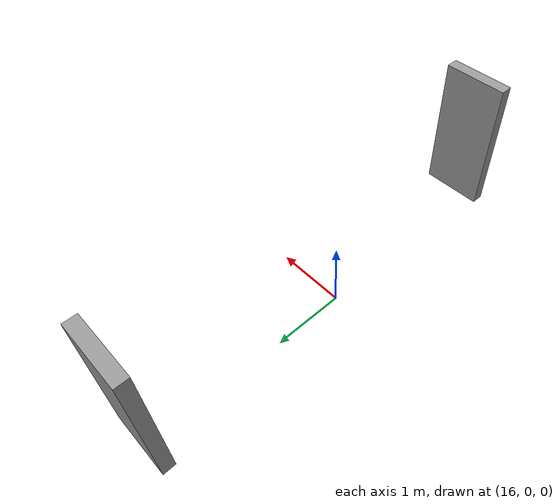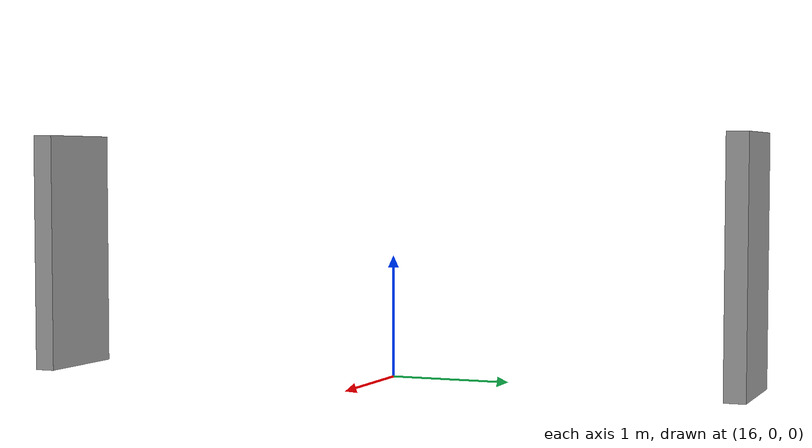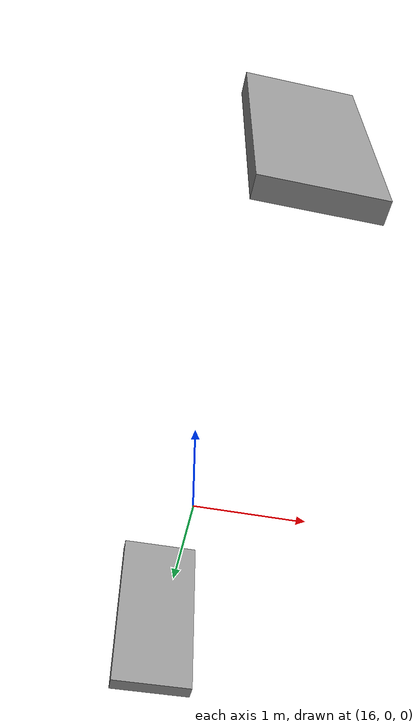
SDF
<?xml version='1.0'?>
<sdf version='1.7'>
  <model name='Untitled'>
    <pose>0 0 0 0 -0 0</pose>
    <link name='Door_0'>
      <collision name='Door_0_Collision'>
        <geometry>
          <box>
            <size>0.9 0.17 2</size>
          </box>
        </geometry>
        <pose>0 0 1 0 -0 0</pose>
      </collision>
      <visual name='Door_0_Visual'>
        <pose>0 0 1 0 -0 0</pose>
        <geometry>
          <box>
            <size>0.9 0.17 2</size>
          </box>
        </geometry>
        <material>
          <script>
            <uri>file://media/materials/scripts/gazebo.material</uri>
            <name>Gazebo/Grey</name>
          </script>
        </material>
      </visual>
      <pose>16.0802 2.91367 0 0 -0 0</pose>
    </link>
    <link name='Door_1'>
      <collision name='Door_1_Collision'>
        <geometry>
          <box>
            <size>0.9 0.17 2</size>
          </box>
        </geometry>
        <pose>0 0 1 0 -0 0</pose>
      </collision>
      <visual name='Door_1_Visual'>
        <pose>0 0 1 0 -0 0</pose>
        <geometry>
          <box>
            <size>0.9 0.17 2</size>
          </box>
        </geometry>
        <material>
          <script>
            <uri>file://media/materials/scripts/gazebo.material</uri>
            <name>Gazebo/Grey</name>
          </script>
        </material>
      </visual>
      <pose>16.2694 -2.91992 0 0 -0 0</pose>
    </link>
    <static>1</static>
  </model>
</sdf>
